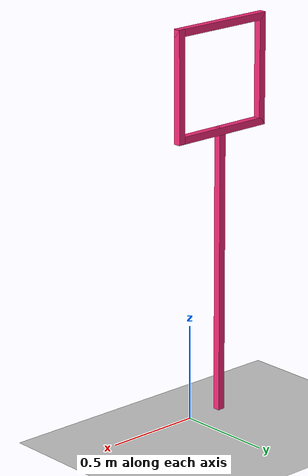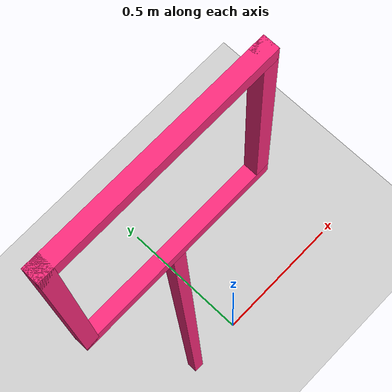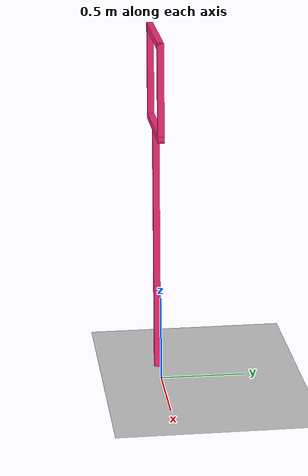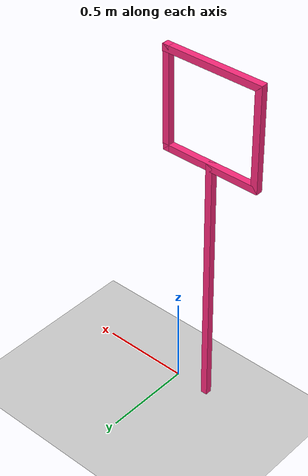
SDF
<sdf version="1.7">
 <world name="default">
  <model name="ground_plane">
   <static>1</static>
   <link name="link">
    <collision name="collision">
     <geometry><plane><normal>0 0 1</normal><size>100 100</size></plane></geometry>
     <surface><friction><ode><mu>100</mu><mu2>50</mu2></ode></friction></surface>
    </collision>
    <visual name="visual">
     <cast_shadows>0</cast_shadows>
     <geometry><plane><normal>0 0 1</normal><size>100 100</size></plane></geometry>
     <material>
      <script><uri>file://media/materials/scripts/gazebo.material</uri><name>Gazebo/Grey</name></script>
     </material>
    </visual>
   </link>
  </model>
  <model name="small_gate_13">
   <link name="rod">
    <pose>0 0 0.75 0 -0 0</pose>
    <inertial>
     <mass>1</mass>
     <inertia>
      <ixx>0.166667</ixx>
      <ixy>0</ixy>
      <ixz>0</ixz>
      <iyy>0.166667</iyy>
      <iyz>0</iyz>
      <izz>0.166667</izz>
     </inertia>
    </inertial>
    <visual name="visual">
     <geometry><box><size>0.0381 0.0381 1.5</size></box></geometry>
     <material>
      <shader type="vertex"><normal_map>__default__</normal_map></shader>
      <ambient>0.978 0.164 0.484 1</ambient>
      <diffuse>0.978 0.164 0.484 1</diffuse>
      <specular>0.01 0.01 0.01 1</specular>
      <emissive>0 0 0 1</emissive>
     </material>
    </visual>
    <collision name="collision">
     <geometry><box><size>0.0381 0.0381 1.5</size></box></geometry>
     <surface>
      <friction>
       <ode><mu>1</mu><mu2>1</mu2><fdir1>0 0 0</fdir1><slip1>0</slip1><slip2>0</slip2></ode>
       <torsional>
        <coefficient>1</coefficient>
        <patch_radius>0</patch_radius>
        <surface_radius>0</surface_radius>
        <use_patch_radius>1</use_patch_radius>
        <ode><slip>0</slip></ode>
       </torsional>
      </friction>
      <bounce><restitution_coefficient>0</restitution_coefficient><threshold>1e+06</threshold></bounce>
      <contact>
       <collide_without_contact>0</collide_without_contact>
       <collide_without_contact_bitmask>1</collide_without_contact_bitmask>
       <collide_bitmask>1</collide_bitmask>
       <ode>
        <soft_cfm>0</soft_cfm>
        <soft_erp>0.2</soft_erp>
        <kp>1e+13</kp>
        <kd>1</kd>
        <max_vel>0.01</max_vel>
        <min_depth>0</min_depth>
       </ode>
       <bullet>
        <split_impulse>1</split_impulse>
        <split_impulse_penetration_threshold>-0.01</split_impulse_penetration_threshold>
        <soft_cfm>0</soft_cfm>
        <soft_erp>0.2</soft_erp>
        <kp>1e+13</kp>
        <kd>1</kd>
       </bullet>
      </contact>
     </surface>
    </collision>
   </link>
   <link name="top_edge">
    <pose>0 0 2.01905 0 -0 0</pose>
    <inertial>
     <mass>1</mass>
     <inertia>
      <ixx>0.166667</ixx>
      <ixy>0</ixy>
      <ixz>0</ixz>
      <iyy>0.166667</iyy>
      <iyz>0</iyz>
      <izz>0.166667</izz>
     </inertia>
    </inertial>
    <visual name="visual">
     <geometry><box><size>0.5762 0.0381 0.0381</size></box></geometry>
     <material>
      <shader type="vertex"><normal_map>__default__</normal_map></shader>
      <ambient>0.978 0.164 0.484 1</ambient>
      <diffuse>0.978 0.164 0.484 1</diffuse>
      <specular>0.01 0.01 0.01 1</specular>
      <emissive>0 0 0 1</emissive>
     </material>
    </visual>
    <collision name="collision">
     <geometry><box><size>0.5762 0.0381 0.0381</size></box></geometry>
     <surface>
      <friction>
       <ode><mu>1</mu><mu2>1</mu2><fdir1>0 0 0</fdir1><slip1>0</slip1><slip2>0</slip2></ode>
       <torsional>
        <coefficient>1</coefficient>
        <patch_radius>0</patch_radius>
        <surface_radius>0</surface_radius>
        <use_patch_radius>1</use_patch_radius>
        <ode><slip>0</slip></ode>
       </torsional>
      </friction>
      <bounce><restitution_coefficient>0</restitution_coefficient><threshold>1e+06</threshold></bounce>
      <contact>
       <collide_without_contact>0</collide_without_contact>
       <collide_without_contact_bitmask>1</collide_without_contact_bitmask>
       <collide_bitmask>1</collide_bitmask>
       <ode>
        <soft_cfm>0</soft_cfm>
        <soft_erp>0.2</soft_erp>
        <kp>1e+13</kp>
        <kd>1</kd>
        <max_vel>0.01</max_vel>
        <min_depth>0</min_depth>
       </ode>
       <bullet>
        <split_impulse>1</split_impulse>
        <split_impulse_penetration_threshold>-0.01</split_impulse_penetration_threshold>
        <soft_cfm>0</soft_cfm>
        <soft_erp>0.2</soft_erp>
        <kp>1e+13</kp>
        <kd>1</kd>
       </bullet>
      </contact>
     </surface>
    </collision>
   </link>
   <link name="bottom_edge">
    <pose>0 0 1.48095 0 -0 0</pose>
    <inertial>
     <mass>1</mass>
     <inertia>
      <ixx>0.166667</ixx>
      <ixy>0</ixy>
      <ixz>0</ixz>
      <iyy>0.166667</iyy>
      <iyz>0</iyz>
      <izz>0.166667</izz>
     </inertia>
    </inertial>
    <visual name="visual">
     <geometry><box><size>0.5762 0.0381 0.0381</size></box></geometry>
     <material>
      <shader type="vertex"><normal_map>__default__</normal_map></shader>
      <ambient>0.978 0.164 0.484 1</ambient>
      <diffuse>0.978 0.164 0.484 1</diffuse>
      <specular>0.01 0.01 0.01 1</specular>
      <emissive>0 0 0 1</emissive>
     </material>
    </visual>
    <collision name="collision">
     <geometry><box><size>0.5762 0.0381 0.0381</size></box></geometry>
     <surface>
      <friction>
       <ode><mu>1</mu><mu2>1</mu2><fdir1>0 0 0</fdir1><slip1>0</slip1><slip2>0</slip2></ode>
       <torsional>
        <coefficient>1</coefficient>
        <patch_radius>0</patch_radius>
        <surface_radius>0</surface_radius>
        <use_patch_radius>1</use_patch_radius>
        <ode><slip>0</slip></ode>
       </torsional>
      </friction>
      <bounce><restitution_coefficient>0</restitution_coefficient><threshold>1e+06</threshold></bounce>
      <contact>
       <collide_without_contact>0</collide_without_contact>
       <collide_without_contact_bitmask>1</collide_without_contact_bitmask>
       <collide_bitmask>1</collide_bitmask>
       <ode>
        <soft_cfm>0</soft_cfm>
        <soft_erp>0.2</soft_erp>
        <kp>1e+13</kp>
        <kd>1</kd>
        <max_vel>0.01</max_vel>
        <min_depth>0</min_depth>
       </ode>
       <bullet>
        <split_impulse>1</split_impulse>
        <split_impulse_penetration_threshold>-0.01</split_impulse_penetration_threshold>
        <soft_cfm>0</soft_cfm>
        <soft_erp>0.2</soft_erp>
        <kp>1e+13</kp>
        <kd>1</kd>
       </bullet>
      </contact>
     </surface>
    </collision>
   </link>
   <link name="left_edge">
    <pose>-0.26905 0 1.75 0 -0 0</pose>
    <inertial>
     <mass>1</mass>
     <inertia>
      <ixx>0.166667</ixx>
      <ixy>0</ixy>
      <ixz>0</ixz>
      <iyy>0.166667</iyy>
      <iyz>0</iyz>
      <izz>0.166667</izz>
     </inertia>
    </inertial>
    <visual name="visual">
     <geometry><box><size>0.0381 0.0381 0.5762</size></box></geometry>
     <material>
      <shader type="vertex"><normal_map>__default__</normal_map></shader>
      <ambient>0.978 0.164 0.484 1</ambient>
      <diffuse>0.978 0.164 0.484 1</diffuse>
      <specular>0.01 0.01 0.01 1</specular>
      <emissive>0 0 0 1</emissive>
     </material>
    </visual>
    <collision name="collision">
     <geometry><box><size>0.0381 0.0381 0.5762</size></box></geometry>
     <surface>
      <friction>
       <ode><mu>1</mu><mu2>1</mu2><fdir1>0 0 0</fdir1><slip1>0</slip1><slip2>0</slip2></ode>
       <torsional>
        <coefficient>1</coefficient>
        <patch_radius>0</patch_radius>
        <surface_radius>0</surface_radius>
        <use_patch_radius>1</use_patch_radius>
        <ode><slip>0</slip></ode>
       </torsional>
      </friction>
      <bounce><restitution_coefficient>0</restitution_coefficient><threshold>1e+06</threshold></bounce>
      <contact>
       <collide_without_contact>0</collide_without_contact>
       <collide_without_contact_bitmask>1</collide_without_contact_bitmask>
       <collide_bitmask>1</collide_bitmask>
       <ode>
        <soft_cfm>0</soft_cfm>
        <soft_erp>0.2</soft_erp>
        <kp>1e+13</kp>
        <kd>1</kd>
        <max_vel>0.01</max_vel>
        <min_depth>0</min_depth>
       </ode>
       <bullet>
        <split_impulse>1</split_impulse>
        <split_impulse_penetration_threshold>-0.01</split_impulse_penetration_threshold>
        <soft_cfm>0</soft_cfm>
        <soft_erp>0.2</soft_erp>
        <kp>1e+13</kp>
        <kd>1</kd>
       </bullet>
      </contact>
     </surface>
    </collision>
   </link>
   <link name="right_edge">
    <pose>0.26905 0 1.75 0 -0 0</pose>
    <inertial>
     <mass>1</mass>
     <inertia>
      <ixx>0.166667</ixx>
      <ixy>0</ixy>
      <ixz>0</ixz>
      <iyy>0.166667</iyy>
      <iyz>0</iyz>
      <izz>0.166667</izz>
     </inertia>
    </inertial>
    <visual name="visual">
     <geometry><box><size>0.0381 0.0381 0.5762</size></box></geometry>
     <material>
      <shader type="vertex"><normal_map>__default__</normal_map></shader>
      <ambient>0.978 0.164 0.484 1</ambient>
      <diffuse>0.978 0.164 0.484 1</diffuse>
      <specular>0.01 0.01 0.01 1</specular>
      <emissive>0 0 0 1</emissive>
     </material>
    </visual>
    <collision name="collision">
     <geometry><box><size>0.0381 0.0381 0.5762</size></box></geometry>
     <surface>
      <friction>
       <ode><mu>1</mu><mu2>1</mu2><fdir1>0 0 0</fdir1><slip1>0</slip1><slip2>0</slip2></ode>
       <torsional>
        <coefficient>1</coefficient>
        <patch_radius>0</patch_radius>
        <surface_radius>0</surface_radius>
        <use_patch_radius>1</use_patch_radius>
        <ode><slip>0</slip></ode>
       </torsional>
      </friction>
      <bounce><restitution_coefficient>0</restitution_coefficient><threshold>1e+06</threshold></bounce>
      <contact>
       <collide_without_contact>0</collide_without_contact>
       <collide_without_contact_bitmask>1</collide_without_contact_bitmask>
       <collide_bitmask>1</collide_bitmask>
       <ode>
        <soft_cfm>0</soft_cfm>
        <soft_erp>0.2</soft_erp>
        <kp>1e+13</kp>
        <kd>1</kd>
        <max_vel>0.01</max_vel>
        <min_depth>0</min_depth>
       </ode>
       <bullet>
        <split_impulse>1</split_impulse>
        <split_impulse_penetration_threshold>-0.01</split_impulse_penetration_threshold>
        <soft_cfm>0</soft_cfm>
        <soft_erp>0.2</soft_erp>
        <kp>1e+13</kp>
        <kd>1</kd>
       </bullet>
      </contact>
     </surface>
    </collision>
   </link>
   <static>1</static>
   <pose>-0.2 0 0 0 -0 0</pose>
  </model>
  <model name="asphalt_plane">
   <static>1</static>
   <link name="link">
    <collision name="collision"><geometry><box><size>200 200 0.1</size></box></geometry></collision>
    <visual name="visual">
     <cast_shadows>0</cast_shadows>
     <transparency>1</transparency>
     <geometry><box><size>200 200 0.1</size></box></geometry>
     <material>
      <script>
       <uri>model://asphalt_plane/materials/scripts</uri>
       <uri>model://asphalt_plane/materials/textures</uri>
       <name>vrc/asphalt</name>
      </script>
     </material>
    </visual>
   </link>
   <pose>3.87759 -1.81498 3.8 0 -0 0</pose>
  </model>
  <model name="asphalt_plane">
   <static>1</static>
   <link name="link">
    <collision name="collision"><geometry><box><size>200 200 0.1</size></box></geometry></collision>
    <visual name="visual">
     <cast_shadows>0</cast_shadows>
     <transparency>1</transparency>
     <geometry><box><size>200 200 0.1</size></box></geometry>
     <material>
      <script>
       <uri>model://asphalt_plane/materials/scripts</uri>
       <uri>model://asphalt_plane/materials/textures</uri>
       <name>vrc/asphalt</name>
      </script>
     </material>
    </visual>
   </link>
   <pose>3.87759 -1.81498 3.8 0 -0 0</pose>
  </model>
 </world>
</sdf>
